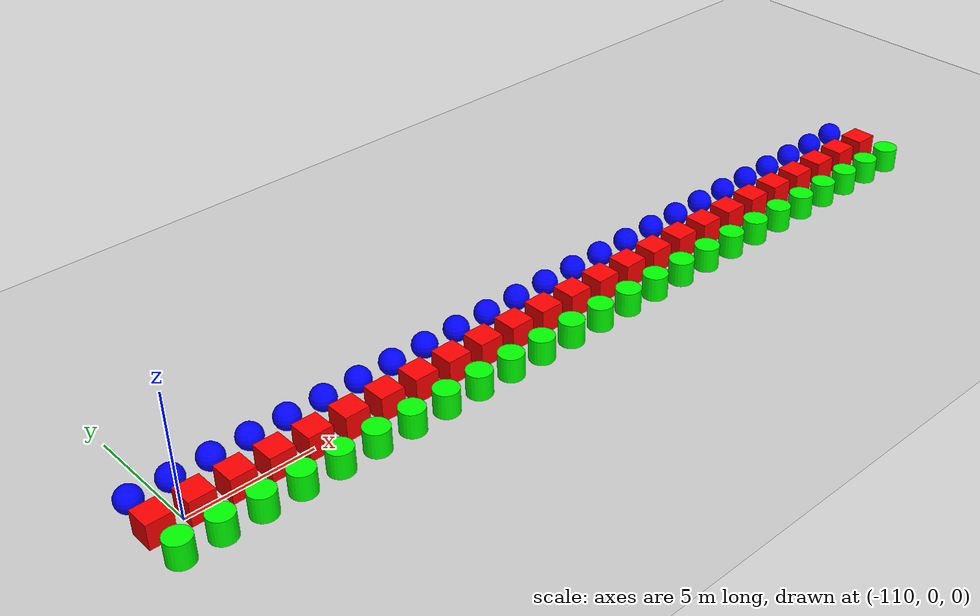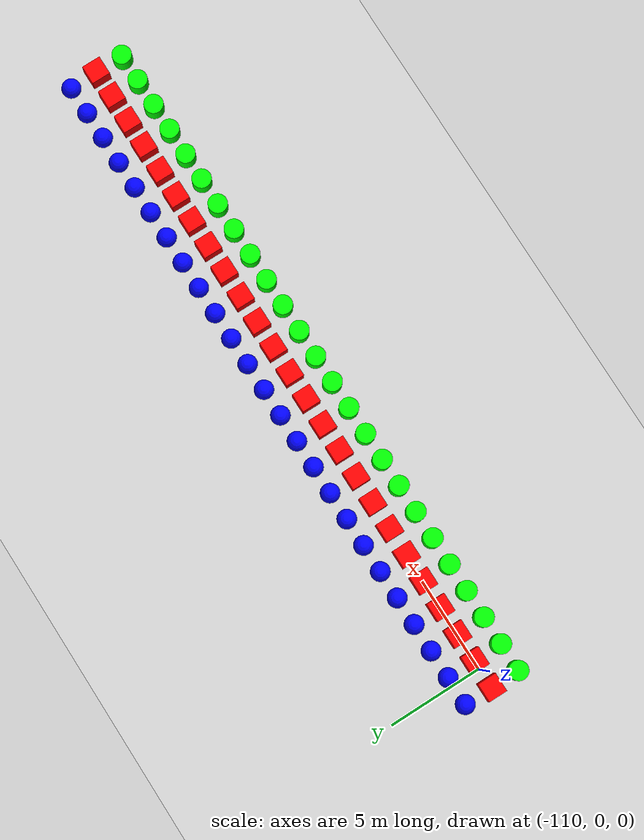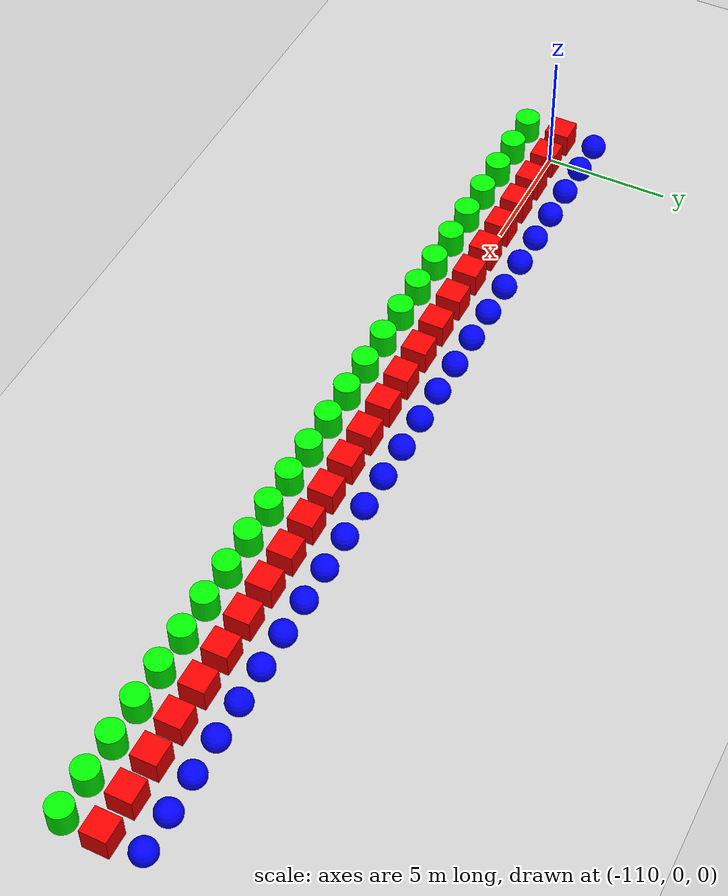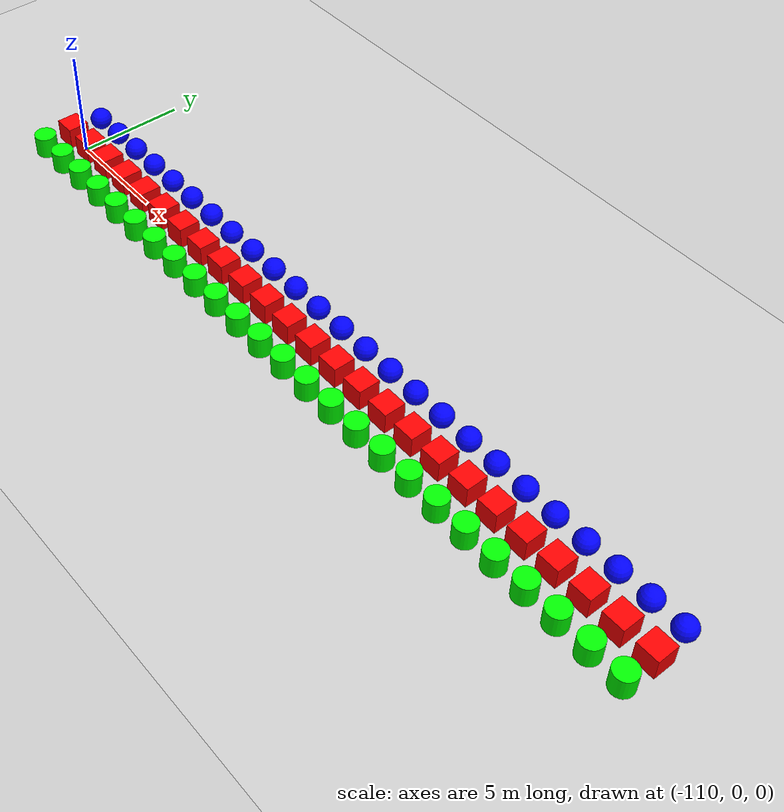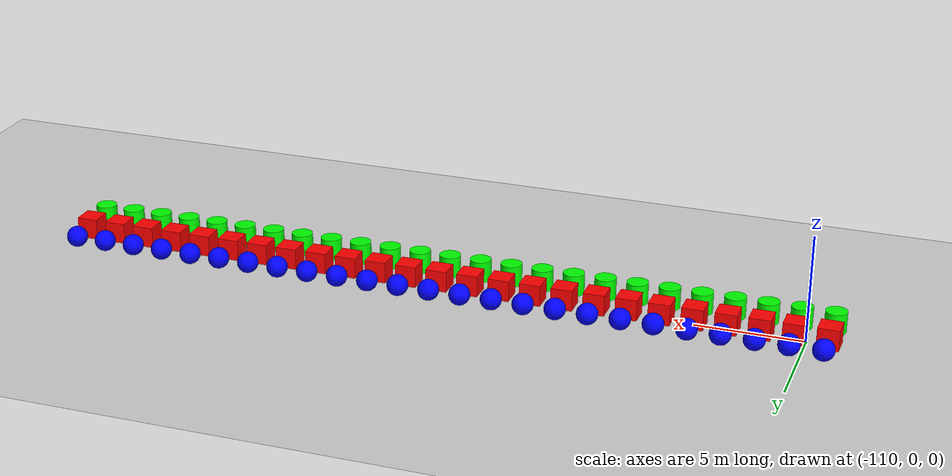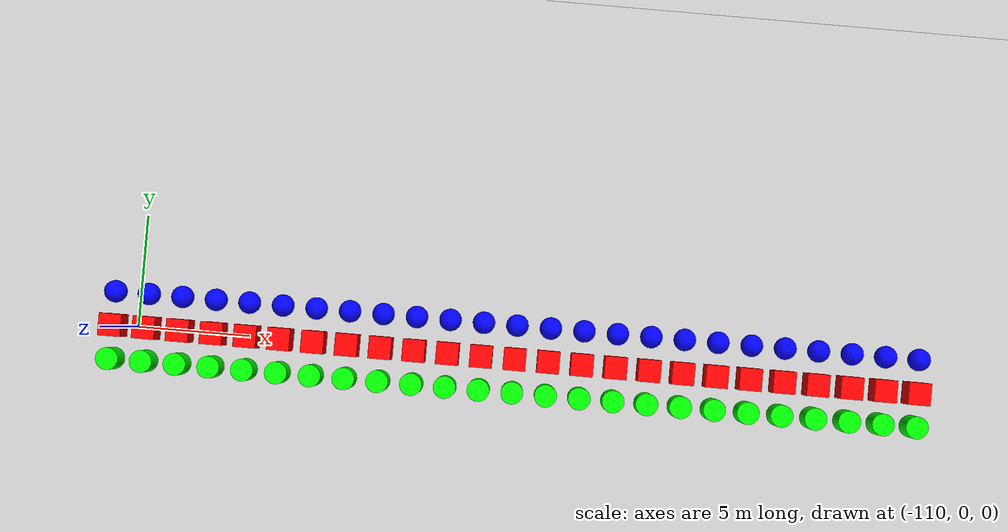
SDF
<sdf version="1.6">
 <world name="shapes">
  <model name="ground_plane">
   <static>true</static>
   <link name="link">
    <collision name="collision">
     <geometry><plane><normal>0 0 1</normal><size>100 100</size></plane></geometry>
    </collision>
    <visual name="visual">
     <geometry><plane><normal>0 0 1</normal><size>100 100</size></plane></geometry>
     <material>
      <ambient>0.8 0.8 0.8 1</ambient>
      <diffuse>0.8 0.8 0.8 1</diffuse>
      <specular>0.8 0.8 0.8 1</specular>
     </material>
    </visual>
   </link>
  </model>
  <model name="box_426">
   <static>false</static>
   <pose>-111.0 0 0.5 0 0 0</pose>
   <link name="box_link">
    <inertial>
     <inertia><ixx>1</ixx><ixy>0</ixy><ixz>0</ixz><iyy>1</iyy><iyz>0</iyz><izz>1</izz></inertia>
     <mass>1.0</mass>
    </inertial>
    <collision name="box_collision"><geometry><box><size>1 1 1</size></box></geometry></collision>
    <visual name="box_visual">
     <geometry><box><size>1 1 1</size></box></geometry>
     <material><ambient>1 0 0 1</ambient><diffuse>1 0 0 1</diffuse><specular>1 0 0 1</specular></material>
    </visual>
   </link>
  </model>
  <model name="cylinder_426">
   <static>false</static>
   <pose>-111.0 -1.5 0.5 0 0 0</pose>
   <link name="cylinder_link">
    <inertial>
     <inertia><ixx>2</ixx><ixy>0</ixy><ixz>0</ixz><iyy>2</iyy><iyz>0</iyz><izz>2</izz></inertia>
     <mass>2.0</mass>
    </inertial>
    <collision name="cylinder_collision">
     <geometry><cylinder><radius>0.5</radius><length>1.0</length></cylinder></geometry>
    </collision>
    <visual name="cylinder_visual">
     <geometry><cylinder><radius>0.5</radius><length>1.0</length></cylinder></geometry>
     <material><ambient>0 1 0 1</ambient><diffuse>0 1 0 1</diffuse><specular>0 1 0 1</specular></material>
    </visual>
   </link>
  </model>
  <model name="sphere_426">
   <static>false</static>
   <pose>-111.0 1.5 0.5 0 0 0</pose>
   <link name="sphere_link">
    <inertial>
     <inertia><ixx>3</ixx><ixy>0</ixy><ixz>0</ixz><iyy>3</iyy><iyz>0</iyz><izz>3</izz></inertia>
     <mass>3.0</mass>
    </inertial>
    <collision name="sphere_collision"><geometry><sphere><radius>0.5</radius></sphere></geometry></collision>
    <visual name="sphere_visual">
     <geometry><sphere><radius>0.5</radius></sphere></geometry>
     <material><ambient>0 0 1 1</ambient><diffuse>0 0 1 1</diffuse><specular>0 0 1 1</specular></material>
    </visual>
   </link>
  </model>
  <model name="box_427">
   <static>false</static>
   <pose>-109.5 0 0.5 0 0 0</pose>
   <link name="box_link">
    <inertial>
     <inertia><ixx>1</ixx><ixy>0</ixy><ixz>0</ixz><iyy>1</iyy><iyz>0</iyz><izz>1</izz></inertia>
     <mass>1.0</mass>
    </inertial>
    <collision name="box_collision"><geometry><box><size>1 1 1</size></box></geometry></collision>
    <visual name="box_visual">
     <geometry><box><size>1 1 1</size></box></geometry>
     <material><ambient>1 0 0 1</ambient><diffuse>1 0 0 1</diffuse><specular>1 0 0 1</specular></material>
    </visual>
   </link>
  </model>
  <model name="cylinder_427">
   <static>false</static>
   <pose>-109.5 -1.5 0.5 0 0 0</pose>
   <link name="cylinder_link">
    <inertial>
     <inertia><ixx>2</ixx><ixy>0</ixy><ixz>0</ixz><iyy>2</iyy><iyz>0</iyz><izz>2</izz></inertia>
     <mass>2.0</mass>
    </inertial>
    <collision name="cylinder_collision">
     <geometry><cylinder><radius>0.5</radius><length>1.0</length></cylinder></geometry>
    </collision>
    <visual name="cylinder_visual">
     <geometry><cylinder><radius>0.5</radius><length>1.0</length></cylinder></geometry>
     <material><ambient>0 1 0 1</ambient><diffuse>0 1 0 1</diffuse><specular>0 1 0 1</specular></material>
    </visual>
   </link>
  </model>
  <model name="sphere_427">
   <static>false</static>
   <pose>-109.5 1.5 0.5 0 0 0</pose>
   <link name="sphere_link">
    <inertial>
     <inertia><ixx>3</ixx><ixy>0</ixy><ixz>0</ixz><iyy>3</iyy><iyz>0</iyz><izz>3</izz></inertia>
     <mass>3.0</mass>
    </inertial>
    <collision name="sphere_collision"><geometry><sphere><radius>0.5</radius></sphere></geometry></collision>
    <visual name="sphere_visual">
     <geometry><sphere><radius>0.5</radius></sphere></geometry>
     <material><ambient>0 0 1 1</ambient><diffuse>0 0 1 1</diffuse><specular>0 0 1 1</specular></material>
    </visual>
   </link>
  </model>
  <model name="box_428">
   <static>false</static>
   <pose>-108.0 0 0.5 0 0 0</pose>
   <link name="box_link">
    <inertial>
     <inertia><ixx>1</ixx><ixy>0</ixy><ixz>0</ixz><iyy>1</iyy><iyz>0</iyz><izz>1</izz></inertia>
     <mass>1.0</mass>
    </inertial>
    <collision name="box_collision"><geometry><box><size>1 1 1</size></box></geometry></collision>
    <visual name="box_visual">
     <geometry><box><size>1 1 1</size></box></geometry>
     <material><ambient>1 0 0 1</ambient><diffuse>1 0 0 1</diffuse><specular>1 0 0 1</specular></material>
    </visual>
   </link>
  </model>
  <model name="cylinder_428">
   <static>false</static>
   <pose>-108.0 -1.5 0.5 0 0 0</pose>
   <link name="cylinder_link">
    <inertial>
     <inertia><ixx>2</ixx><ixy>0</ixy><ixz>0</ixz><iyy>2</iyy><iyz>0</iyz><izz>2</izz></inertia>
     <mass>2.0</mass>
    </inertial>
    <collision name="cylinder_collision">
     <geometry><cylinder><radius>0.5</radius><length>1.0</length></cylinder></geometry>
    </collision>
    <visual name="cylinder_visual">
     <geometry><cylinder><radius>0.5</radius><length>1.0</length></cylinder></geometry>
     <material><ambient>0 1 0 1</ambient><diffuse>0 1 0 1</diffuse><specular>0 1 0 1</specular></material>
    </visual>
   </link>
  </model>
  <model name="sphere_428">
   <static>false</static>
   <pose>-108.0 1.5 0.5 0 0 0</pose>
   <link name="sphere_link">
    <inertial>
     <inertia><ixx>3</ixx><ixy>0</ixy><ixz>0</ixz><iyy>3</iyy><iyz>0</iyz><izz>3</izz></inertia>
     <mass>3.0</mass>
    </inertial>
    <collision name="sphere_collision"><geometry><sphere><radius>0.5</radius></sphere></geometry></collision>
    <visual name="sphere_visual">
     <geometry><sphere><radius>0.5</radius></sphere></geometry>
     <material><ambient>0 0 1 1</ambient><diffuse>0 0 1 1</diffuse><specular>0 0 1 1</specular></material>
    </visual>
   </link>
  </model>
  <model name="box_429">
   <static>false</static>
   <pose>-106.5 0 0.5 0 0 0</pose>
   <link name="box_link">
    <inertial>
     <inertia><ixx>1</ixx><ixy>0</ixy><ixz>0</ixz><iyy>1</iyy><iyz>0</iyz><izz>1</izz></inertia>
     <mass>1.0</mass>
    </inertial>
    <collision name="box_collision"><geometry><box><size>1 1 1</size></box></geometry></collision>
    <visual name="box_visual">
     <geometry><box><size>1 1 1</size></box></geometry>
     <material><ambient>1 0 0 1</ambient><diffuse>1 0 0 1</diffuse><specular>1 0 0 1</specular></material>
    </visual>
   </link>
  </model>
  <model name="cylinder_429">
   <static>false</static>
   <pose>-106.5 -1.5 0.5 0 0 0</pose>
   <link name="cylinder_link">
    <inertial>
     <inertia><ixx>2</ixx><ixy>0</ixy><ixz>0</ixz><iyy>2</iyy><iyz>0</iyz><izz>2</izz></inertia>
     <mass>2.0</mass>
    </inertial>
    <collision name="cylinder_collision">
     <geometry><cylinder><radius>0.5</radius><length>1.0</length></cylinder></geometry>
    </collision>
    <visual name="cylinder_visual">
     <geometry><cylinder><radius>0.5</radius><length>1.0</length></cylinder></geometry>
     <material><ambient>0 1 0 1</ambient><diffuse>0 1 0 1</diffuse><specular>0 1 0 1</specular></material>
    </visual>
   </link>
  </model>
  <model name="sphere_429">
   <static>false</static>
   <pose>-106.5 1.5 0.5 0 0 0</pose>
   <link name="sphere_link">
    <inertial>
     <inertia><ixx>3</ixx><ixy>0</ixy><ixz>0</ixz><iyy>3</iyy><iyz>0</iyz><izz>3</izz></inertia>
     <mass>3.0</mass>
    </inertial>
    <collision name="sphere_collision"><geometry><sphere><radius>0.5</radius></sphere></geometry></collision>
    <visual name="sphere_visual">
     <geometry><sphere><radius>0.5</radius></sphere></geometry>
     <material><ambient>0 0 1 1</ambient><diffuse>0 0 1 1</diffuse><specular>0 0 1 1</specular></material>
    </visual>
   </link>
  </model>
  <model name="box_430">
   <static>false</static>
   <pose>-105.0 0 0.5 0 0 0</pose>
   <link name="box_link">
    <inertial>
     <inertia><ixx>1</ixx><ixy>0</ixy><ixz>0</ixz><iyy>1</iyy><iyz>0</iyz><izz>1</izz></inertia>
     <mass>1.0</mass>
    </inertial>
    <collision name="box_collision"><geometry><box><size>1 1 1</size></box></geometry></collision>
    <visual name="box_visual">
     <geometry><box><size>1 1 1</size></box></geometry>
     <material><ambient>1 0 0 1</ambient><diffuse>1 0 0 1</diffuse><specular>1 0 0 1</specular></material>
    </visual>
   </link>
  </model>
  <model name="cylinder_430">
   <static>false</static>
   <pose>-105.0 -1.5 0.5 0 0 0</pose>
   <link name="cylinder_link">
    <inertial>
     <inertia><ixx>2</ixx><ixy>0</ixy><ixz>0</ixz><iyy>2</iyy><iyz>0</iyz><izz>2</izz></inertia>
     <mass>2.0</mass>
    </inertial>
    <collision name="cylinder_collision">
     <geometry><cylinder><radius>0.5</radius><length>1.0</length></cylinder></geometry>
    </collision>
    <visual name="cylinder_visual">
     <geometry><cylinder><radius>0.5</radius><length>1.0</length></cylinder></geometry>
     <material><ambient>0 1 0 1</ambient><diffuse>0 1 0 1</diffuse><specular>0 1 0 1</specular></material>
    </visual>
   </link>
  </model>
  <model name="sphere_430">
   <static>false</static>
   <pose>-105.0 1.5 0.5 0 0 0</pose>
   <link name="sphere_link">
    <inertial>
     <inertia><ixx>3</ixx><ixy>0</ixy><ixz>0</ixz><iyy>3</iyy><iyz>0</iyz><izz>3</izz></inertia>
     <mass>3.0</mass>
    </inertial>
    <collision name="sphere_collision"><geometry><sphere><radius>0.5</radius></sphere></geometry></collision>
    <visual name="sphere_visual">
     <geometry><sphere><radius>0.5</radius></sphere></geometry>
     <material><ambient>0 0 1 1</ambient><diffuse>0 0 1 1</diffuse><specular>0 0 1 1</specular></material>
    </visual>
   </link>
  </model>
  <model name="box_431">
   <static>false</static>
   <pose>-103.5 0 0.5 0 0 0</pose>
   <link name="box_link">
    <inertial>
     <inertia><ixx>1</ixx><ixy>0</ixy><ixz>0</ixz><iyy>1</iyy><iyz>0</iyz><izz>1</izz></inertia>
     <mass>1.0</mass>
    </inertial>
    <collision name="box_collision"><geometry><box><size>1 1 1</size></box></geometry></collision>
    <visual name="box_visual">
     <geometry><box><size>1 1 1</size></box></geometry>
     <material><ambient>1 0 0 1</ambient><diffuse>1 0 0 1</diffuse><specular>1 0 0 1</specular></material>
    </visual>
   </link>
  </model>
  <model name="cylinder_431">
   <static>false</static>
   <pose>-103.5 -1.5 0.5 0 0 0</pose>
   <link name="cylinder_link">
    <inertial>
     <inertia><ixx>2</ixx><ixy>0</ixy><ixz>0</ixz><iyy>2</iyy><iyz>0</iyz><izz>2</izz></inertia>
     <mass>2.0</mass>
    </inertial>
    <collision name="cylinder_collision">
     <geometry><cylinder><radius>0.5</radius><length>1.0</length></cylinder></geometry>
    </collision>
    <visual name="cylinder_visual">
     <geometry><cylinder><radius>0.5</radius><length>1.0</length></cylinder></geometry>
     <material><ambient>0 1 0 1</ambient><diffuse>0 1 0 1</diffuse><specular>0 1 0 1</specular></material>
    </visual>
   </link>
  </model>
  <model name="sphere_431">
   <static>false</static>
   <pose>-103.5 1.5 0.5 0 0 0</pose>
   <link name="sphere_link">
    <inertial>
     <inertia><ixx>3</ixx><ixy>0</ixy><ixz>0</ixz><iyy>3</iyy><iyz>0</iyz><izz>3</izz></inertia>
     <mass>3.0</mass>
    </inertial>
    <collision name="sphere_collision"><geometry><sphere><radius>0.5</radius></sphere></geometry></collision>
    <visual name="sphere_visual">
     <geometry><sphere><radius>0.5</radius></sphere></geometry>
     <material><ambient>0 0 1 1</ambient><diffuse>0 0 1 1</diffuse><specular>0 0 1 1</specular></material>
    </visual>
   </link>
  </model>
  <model name="box_432">
   <static>false</static>
   <pose>-102.0 0 0.5 0 0 0</pose>
   <link name="box_link">
    <inertial>
     <inertia><ixx>1</ixx><ixy>0</ixy><ixz>0</ixz><iyy>1</iyy><iyz>0</iyz><izz>1</izz></inertia>
     <mass>1.0</mass>
    </inertial>
    <collision name="box_collision"><geometry><box><size>1 1 1</size></box></geometry></collision>
    <visual name="box_visual">
     <geometry><box><size>1 1 1</size></box></geometry>
     <material><ambient>1 0 0 1</ambient><diffuse>1 0 0 1</diffuse><specular>1 0 0 1</specular></material>
    </visual>
   </link>
  </model>
  <model name="cylinder_432">
   <static>false</static>
   <pose>-102.0 -1.5 0.5 0 0 0</pose>
   <link name="cylinder_link">
    <inertial>
     <inertia><ixx>2</ixx><ixy>0</ixy><ixz>0</ixz><iyy>2</iyy><iyz>0</iyz><izz>2</izz></inertia>
     <mass>2.0</mass>
    </inertial>
    <collision name="cylinder_collision">
     <geometry><cylinder><radius>0.5</radius><length>1.0</length></cylinder></geometry>
    </collision>
    <visual name="cylinder_visual">
     <geometry><cylinder><radius>0.5</radius><length>1.0</length></cylinder></geometry>
     <material><ambient>0 1 0 1</ambient><diffuse>0 1 0 1</diffuse><specular>0 1 0 1</specular></material>
    </visual>
   </link>
  </model>
  <model name="sphere_432">
   <static>false</static>
   <pose>-102.0 1.5 0.5 0 0 0</pose>
   <link name="sphere_link">
    <inertial>
     <inertia><ixx>3</ixx><ixy>0</ixy><ixz>0</ixz><iyy>3</iyy><iyz>0</iyz><izz>3</izz></inertia>
     <mass>3.0</mass>
    </inertial>
    <collision name="sphere_collision"><geometry><sphere><radius>0.5</radius></sphere></geometry></collision>
    <visual name="sphere_visual">
     <geometry><sphere><radius>0.5</radius></sphere></geometry>
     <material><ambient>0 0 1 1</ambient><diffuse>0 0 1 1</diffuse><specular>0 0 1 1</specular></material>
    </visual>
   </link>
  </model>
  <model name="box_433">
   <static>false</static>
   <pose>-100.5 0 0.5 0 0 0</pose>
   <link name="box_link">
    <inertial>
     <inertia><ixx>1</ixx><ixy>0</ixy><ixz>0</ixz><iyy>1</iyy><iyz>0</iyz><izz>1</izz></inertia>
     <mass>1.0</mass>
    </inertial>
    <collision name="box_collision"><geometry><box><size>1 1 1</size></box></geometry></collision>
    <visual name="box_visual">
     <geometry><box><size>1 1 1</size></box></geometry>
     <material><ambient>1 0 0 1</ambient><diffuse>1 0 0 1</diffuse><specular>1 0 0 1</specular></material>
    </visual>
   </link>
  </model>
  <model name="cylinder_433">
   <static>false</static>
   <pose>-100.5 -1.5 0.5 0 0 0</pose>
   <link name="cylinder_link">
    <inertial>
     <inertia><ixx>2</ixx><ixy>0</ixy><ixz>0</ixz><iyy>2</iyy><iyz>0</iyz><izz>2</izz></inertia>
     <mass>2.0</mass>
    </inertial>
    <collision name="cylinder_collision">
     <geometry><cylinder><radius>0.5</radius><length>1.0</length></cylinder></geometry>
    </collision>
    <visual name="cylinder_visual">
     <geometry><cylinder><radius>0.5</radius><length>1.0</length></cylinder></geometry>
     <material><ambient>0 1 0 1</ambient><diffuse>0 1 0 1</diffuse><specular>0 1 0 1</specular></material>
    </visual>
   </link>
  </model>
  <model name="sphere_433">
   <static>false</static>
   <pose>-100.5 1.5 0.5 0 0 0</pose>
   <link name="sphere_link">
    <inertial>
     <inertia><ixx>3</ixx><ixy>0</ixy><ixz>0</ixz><iyy>3</iyy><iyz>0</iyz><izz>3</izz></inertia>
     <mass>3.0</mass>
    </inertial>
    <collision name="sphere_collision"><geometry><sphere><radius>0.5</radius></sphere></geometry></collision>
    <visual name="sphere_visual">
     <geometry><sphere><radius>0.5</radius></sphere></geometry>
     <material><ambient>0 0 1 1</ambient><diffuse>0 0 1 1</diffuse><specular>0 0 1 1</specular></material>
    </visual>
   </link>
  </model>
  <model name="box_434">
   <static>false</static>
   <pose>-99.0 0 0.5 0 0 0</pose>
   <link name="box_link">
    <inertial>
     <inertia><ixx>1</ixx><ixy>0</ixy><ixz>0</ixz><iyy>1</iyy><iyz>0</iyz><izz>1</izz></inertia>
     <mass>1.0</mass>
    </inertial>
    <collision name="box_collision"><geometry><box><size>1 1 1</size></box></geometry></collision>
    <visual name="box_visual">
     <geometry><box><size>1 1 1</size></box></geometry>
     <material><ambient>1 0 0 1</ambient><diffuse>1 0 0 1</diffuse><specular>1 0 0 1</specular></material>
    </visual>
   </link>
  </model>
  <model name="cylinder_434">
   <static>false</static>
   <pose>-99.0 -1.5 0.5 0 0 0</pose>
   <link name="cylinder_link">
    <inertial>
     <inertia><ixx>2</ixx><ixy>0</ixy><ixz>0</ixz><iyy>2</iyy><iyz>0</iyz><izz>2</izz></inertia>
     <mass>2.0</mass>
    </inertial>
    <collision name="cylinder_collision">
     <geometry><cylinder><radius>0.5</radius><length>1.0</length></cylinder></geometry>
    </collision>
    <visual name="cylinder_visual">
     <geometry><cylinder><radius>0.5</radius><length>1.0</length></cylinder></geometry>
     <material><ambient>0 1 0 1</ambient><diffuse>0 1 0 1</diffuse><specular>0 1 0 1</specular></material>
    </visual>
   </link>
  </model>
  <model name="sphere_434">
   <static>false</static>
   <pose>-99.0 1.5 0.5 0 0 0</pose>
   <link name="sphere_link">
    <inertial>
     <inertia><ixx>3</ixx><ixy>0</ixy><ixz>0</ixz><iyy>3</iyy><iyz>0</iyz><izz>3</izz></inertia>
     <mass>3.0</mass>
    </inertial>
    <collision name="sphere_collision"><geometry><sphere><radius>0.5</radius></sphere></geometry></collision>
    <visual name="sphere_visual">
     <geometry><sphere><radius>0.5</radius></sphere></geometry>
     <material><ambient>0 0 1 1</ambient><diffuse>0 0 1 1</diffuse><specular>0 0 1 1</specular></material>
    </visual>
   </link>
  </model>
  <model name="box_435">
   <static>false</static>
   <pose>-97.5 0 0.5 0 0 0</pose>
   <link name="box_link">
    <inertial>
     <inertia><ixx>1</ixx><ixy>0</ixy><ixz>0</ixz><iyy>1</iyy><iyz>0</iyz><izz>1</izz></inertia>
     <mass>1.0</mass>
    </inertial>
    <collision name="box_collision"><geometry><box><size>1 1 1</size></box></geometry></collision>
    <visual name="box_visual">
     <geometry><box><size>1 1 1</size></box></geometry>
     <material><ambient>1 0 0 1</ambient><diffuse>1 0 0 1</diffuse><specular>1 0 0 1</specular></material>
    </visual>
   </link>
  </model>
  <model name="cylinder_435">
   <static>false</static>
   <pose>-97.5 -1.5 0.5 0 0 0</pose>
   <link name="cylinder_link">
    <inertial>
     <inertia><ixx>2</ixx><ixy>0</ixy><ixz>0</ixz><iyy>2</iyy><iyz>0</iyz><izz>2</izz></inertia>
     <mass>2.0</mass>
    </inertial>
    <collision name="cylinder_collision">
     <geometry><cylinder><radius>0.5</radius><length>1.0</length></cylinder></geometry>
    </collision>
    <visual name="cylinder_visual">
     <geometry><cylinder><radius>0.5</radius><length>1.0</length></cylinder></geometry>
     <material><ambient>0 1 0 1</ambient><diffuse>0 1 0 1</diffuse><specular>0 1 0 1</specular></material>
    </visual>
   </link>
  </model>
  <model name="sphere_435">
   <static>false</static>
   <pose>-97.5 1.5 0.5 0 0 0</pose>
   <link name="sphere_link">
    <inertial>
     <inertia><ixx>3</ixx><ixy>0</ixy><ixz>0</ixz><iyy>3</iyy><iyz>0</iyz><izz>3</izz></inertia>
     <mass>3.0</mass>
    </inertial>
    <collision name="sphere_collision"><geometry><sphere><radius>0.5</radius></sphere></geometry></collision>
    <visual name="sphere_visual">
     <geometry><sphere><radius>0.5</radius></sphere></geometry>
     <material><ambient>0 0 1 1</ambient><diffuse>0 0 1 1</diffuse><specular>0 0 1 1</specular></material>
    </visual>
   </link>
  </model>
  <model name="box_436">
   <static>false</static>
   <pose>-96.0 0 0.5 0 0 0</pose>
   <link name="box_link">
    <inertial>
     <inertia><ixx>1</ixx><ixy>0</ixy><ixz>0</ixz><iyy>1</iyy><iyz>0</iyz><izz>1</izz></inertia>
     <mass>1.0</mass>
    </inertial>
    <collision name="box_collision"><geometry><box><size>1 1 1</size></box></geometry></collision>
    <visual name="box_visual">
     <geometry><box><size>1 1 1</size></box></geometry>
     <material><ambient>1 0 0 1</ambient><diffuse>1 0 0 1</diffuse><specular>1 0 0 1</specular></material>
    </visual>
   </link>
  </model>
  <model name="cylinder_436">
   <static>false</static>
   <pose>-96.0 -1.5 0.5 0 0 0</pose>
   <link name="cylinder_link">
    <inertial>
     <inertia><ixx>2</ixx><ixy>0</ixy><ixz>0</ixz><iyy>2</iyy><iyz>0</iyz><izz>2</izz></inertia>
     <mass>2.0</mass>
    </inertial>
    <collision name="cylinder_collision">
     <geometry><cylinder><radius>0.5</radius><length>1.0</length></cylinder></geometry>
    </collision>
    <visual name="cylinder_visual">
     <geometry><cylinder><radius>0.5</radius><length>1.0</length></cylinder></geometry>
     <material><ambient>0 1 0 1</ambient><diffuse>0 1 0 1</diffuse><specular>0 1 0 1</specular></material>
    </visual>
   </link>
  </model>
  <model name="sphere_436">
   <static>false</static>
   <pose>-96.0 1.5 0.5 0 0 0</pose>
   <link name="sphere_link">
    <inertial>
     <inertia><ixx>3</ixx><ixy>0</ixy><ixz>0</ixz><iyy>3</iyy><iyz>0</iyz><izz>3</izz></inertia>
     <mass>3.0</mass>
    </inertial>
    <collision name="sphere_collision"><geometry><sphere><radius>0.5</radius></sphere></geometry></collision>
    <visual name="sphere_visual">
     <geometry><sphere><radius>0.5</radius></sphere></geometry>
     <material><ambient>0 0 1 1</ambient><diffuse>0 0 1 1</diffuse><specular>0 0 1 1</specular></material>
    </visual>
   </link>
  </model>
  <model name="box_437">
   <static>false</static>
   <pose>-94.5 0 0.5 0 0 0</pose>
   <link name="box_link">
    <inertial>
     <inertia><ixx>1</ixx><ixy>0</ixy><ixz>0</ixz><iyy>1</iyy><iyz>0</iyz><izz>1</izz></inertia>
     <mass>1.0</mass>
    </inertial>
    <collision name="box_collision"><geometry><box><size>1 1 1</size></box></geometry></collision>
    <visual name="box_visual">
     <geometry><box><size>1 1 1</size></box></geometry>
     <material><ambient>1 0 0 1</ambient><diffuse>1 0 0 1</diffuse><specular>1 0 0 1</specular></material>
    </visual>
   </link>
  </model>
  <model name="cylinder_437">
   <static>false</static>
   <pose>-94.5 -1.5 0.5 0 0 0</pose>
   <link name="cylinder_link">
    <inertial>
     <inertia><ixx>2</ixx><ixy>0</ixy><ixz>0</ixz><iyy>2</iyy><iyz>0</iyz><izz>2</izz></inertia>
     <mass>2.0</mass>
    </inertial>
    <collision name="cylinder_collision">
     <geometry><cylinder><radius>0.5</radius><length>1.0</length></cylinder></geometry>
    </collision>
    <visual name="cylinder_visual">
     <geometry><cylinder><radius>0.5</radius><length>1.0</length></cylinder></geometry>
     <material><ambient>0 1 0 1</ambient><diffuse>0 1 0 1</diffuse><specular>0 1 0 1</specular></material>
    </visual>
   </link>
  </model>
  <model name="sphere_437">
   <static>false</static>
   <pose>-94.5 1.5 0.5 0 0 0</pose>
   <link name="sphere_link">
    <inertial>
     <inertia><ixx>3</ixx><ixy>0</ixy><ixz>0</ixz><iyy>3</iyy><iyz>0</iyz><izz>3</izz></inertia>
     <mass>3.0</mass>
    </inertial>
    <collision name="sphere_collision"><geometry><sphere><radius>0.5</radius></sphere></geometry></collision>
    <visual name="sphere_visual">
     <geometry><sphere><radius>0.5</radius></sphere></geometry>
     <material><ambient>0 0 1 1</ambient><diffuse>0 0 1 1</diffuse><specular>0 0 1 1</specular></material>
    </visual>
   </link>
  </model>
  <model name="box_438">
   <static>false</static>
   <pose>-93.0 0 0.5 0 0 0</pose>
   <link name="box_link">
    <inertial>
     <inertia><ixx>1</ixx><ixy>0</ixy><ixz>0</ixz><iyy>1</iyy><iyz>0</iyz><izz>1</izz></inertia>
     <mass>1.0</mass>
    </inertial>
    <collision name="box_collision"><geometry><box><size>1 1 1</size></box></geometry></collision>
    <visual name="box_visual">
     <geometry><box><size>1 1 1</size></box></geometry>
     <material><ambient>1 0 0 1</ambient><diffuse>1 0 0 1</diffuse><specular>1 0 0 1</specular></material>
    </visual>
   </link>
  </model>
  <model name="cylinder_438">
   <static>false</static>
   <pose>-93.0 -1.5 0.5 0 0 0</pose>
   <link name="cylinder_link">
    <inertial>
     <inertia><ixx>2</ixx><ixy>0</ixy><ixz>0</ixz><iyy>2</iyy><iyz>0</iyz><izz>2</izz></inertia>
     <mass>2.0</mass>
    </inertial>
    <collision name="cylinder_collision">
     <geometry><cylinder><radius>0.5</radius><length>1.0</length></cylinder></geometry>
    </collision>
    <visual name="cylinder_visual">
     <geometry><cylinder><radius>0.5</radius><length>1.0</length></cylinder></geometry>
     <material><ambient>0 1 0 1</ambient><diffuse>0 1 0 1</diffuse><specular>0 1 0 1</specular></material>
    </visual>
   </link>
  </model>
  <model name="sphere_438">
   <static>false</static>
   <pose>-93.0 1.5 0.5 0 0 0</pose>
   <link name="sphere_link">
    <inertial>
     <inertia><ixx>3</ixx><ixy>0</ixy><ixz>0</ixz><iyy>3</iyy><iyz>0</iyz><izz>3</izz></inertia>
     <mass>3.0</mass>
    </inertial>
    <collision name="sphere_collision"><geometry><sphere><radius>0.5</radius></sphere></geometry></collision>
    <visual name="sphere_visual">
     <geometry><sphere><radius>0.5</radius></sphere></geometry>
     <material><ambient>0 0 1 1</ambient><diffuse>0 0 1 1</diffuse><specular>0 0 1 1</specular></material>
    </visual>
   </link>
  </model>
  <model name="box_439">
   <static>false</static>
   <pose>-91.5 0 0.5 0 0 0</pose>
   <link name="box_link">
    <inertial>
     <inertia><ixx>1</ixx><ixy>0</ixy><ixz>0</ixz><iyy>1</iyy><iyz>0</iyz><izz>1</izz></inertia>
     <mass>1.0</mass>
    </inertial>
    <collision name="box_collision"><geometry><box><size>1 1 1</size></box></geometry></collision>
    <visual name="box_visual">
     <geometry><box><size>1 1 1</size></box></geometry>
     <material><ambient>1 0 0 1</ambient><diffuse>1 0 0 1</diffuse><specular>1 0 0 1</specular></material>
    </visual>
   </link>
  </model>
  <model name="cylinder_439">
   <static>false</static>
   <pose>-91.5 -1.5 0.5 0 0 0</pose>
   <link name="cylinder_link">
    <inertial>
     <inertia><ixx>2</ixx><ixy>0</ixy><ixz>0</ixz><iyy>2</iyy><iyz>0</iyz><izz>2</izz></inertia>
     <mass>2.0</mass>
    </inertial>
    <collision name="cylinder_collision">
     <geometry><cylinder><radius>0.5</radius><length>1.0</length></cylinder></geometry>
    </collision>
    <visual name="cylinder_visual">
     <geometry><cylinder><radius>0.5</radius><length>1.0</length></cylinder></geometry>
     <material><ambient>0 1 0 1</ambient><diffuse>0 1 0 1</diffuse><specular>0 1 0 1</specular></material>
    </visual>
   </link>
  </model>
  <model name="sphere_439">
   <static>false</static>
   <pose>-91.5 1.5 0.5 0 0 0</pose>
   <link name="sphere_link">
    <inertial>
     <inertia><ixx>3</ixx><ixy>0</ixy><ixz>0</ixz><iyy>3</iyy><iyz>0</iyz><izz>3</izz></inertia>
     <mass>3.0</mass>
    </inertial>
    <collision name="sphere_collision"><geometry><sphere><radius>0.5</radius></sphere></geometry></collision>
    <visual name="sphere_visual">
     <geometry><sphere><radius>0.5</radius></sphere></geometry>
     <material><ambient>0 0 1 1</ambient><diffuse>0 0 1 1</diffuse><specular>0 0 1 1</specular></material>
    </visual>
   </link>
  </model>
  <model name="box_440">
   <static>false</static>
   <pose>-90.0 0 0.5 0 0 0</pose>
   <link name="box_link">
    <inertial>
     <inertia><ixx>1</ixx><ixy>0</ixy><ixz>0</ixz><iyy>1</iyy><iyz>0</iyz><izz>1</izz></inertia>
     <mass>1.0</mass>
    </inertial>
    <collision name="box_collision"><geometry><box><size>1 1 1</size></box></geometry></collision>
    <visual name="box_visual">
     <geometry><box><size>1 1 1</size></box></geometry>
     <material><ambient>1 0 0 1</ambient><diffuse>1 0 0 1</diffuse><specular>1 0 0 1</specular></material>
    </visual>
   </link>
  </model>
  <model name="cylinder_440">
   <static>false</static>
   <pose>-90.0 -1.5 0.5 0 0 0</pose>
   <link name="cylinder_link">
    <inertial>
     <inertia><ixx>2</ixx><ixy>0</ixy><ixz>0</ixz><iyy>2</iyy><iyz>0</iyz><izz>2</izz></inertia>
     <mass>2.0</mass>
    </inertial>
    <collision name="cylinder_collision">
     <geometry><cylinder><radius>0.5</radius><length>1.0</length></cylinder></geometry>
    </collision>
    <visual name="cylinder_visual">
     <geometry><cylinder><radius>0.5</radius><length>1.0</length></cylinder></geometry>
     <material><ambient>0 1 0 1</ambient><diffuse>0 1 0 1</diffuse><specular>0 1 0 1</specular></material>
    </visual>
   </link>
  </model>
  <model name="sphere_440">
   <static>false</static>
   <pose>-90.0 1.5 0.5 0 0 0</pose>
   <link name="sphere_link">
    <inertial>
     <inertia><ixx>3</ixx><ixy>0</ixy><ixz>0</ixz><iyy>3</iyy><iyz>0</iyz><izz>3</izz></inertia>
     <mass>3.0</mass>
    </inertial>
    <collision name="sphere_collision"><geometry><sphere><radius>0.5</radius></sphere></geometry></collision>
    <visual name="sphere_visual">
     <geometry><sphere><radius>0.5</radius></sphere></geometry>
     <material><ambient>0 0 1 1</ambient><diffuse>0 0 1 1</diffuse><specular>0 0 1 1</specular></material>
    </visual>
   </link>
  </model>
  <model name="box_441">
   <static>false</static>
   <pose>-88.5 0 0.5 0 0 0</pose>
   <link name="box_link">
    <inertial>
     <inertia><ixx>1</ixx><ixy>0</ixy><ixz>0</ixz><iyy>1</iyy><iyz>0</iyz><izz>1</izz></inertia>
     <mass>1.0</mass>
    </inertial>
    <collision name="box_collision"><geometry><box><size>1 1 1</size></box></geometry></collision>
    <visual name="box_visual">
     <geometry><box><size>1 1 1</size></box></geometry>
     <material><ambient>1 0 0 1</ambient><diffuse>1 0 0 1</diffuse><specular>1 0 0 1</specular></material>
    </visual>
   </link>
  </model>
  <model name="cylinder_441">
   <static>false</static>
   <pose>-88.5 -1.5 0.5 0 0 0</pose>
   <link name="cylinder_link">
    <inertial>
     <inertia><ixx>2</ixx><ixy>0</ixy><ixz>0</ixz><iyy>2</iyy><iyz>0</iyz><izz>2</izz></inertia>
     <mass>2.0</mass>
    </inertial>
    <collision name="cylinder_collision">
     <geometry><cylinder><radius>0.5</radius><length>1.0</length></cylinder></geometry>
    </collision>
    <visual name="cylinder_visual">
     <geometry><cylinder><radius>0.5</radius><length>1.0</length></cylinder></geometry>
     <material><ambient>0 1 0 1</ambient><diffuse>0 1 0 1</diffuse><specular>0 1 0 1</specular></material>
    </visual>
   </link>
  </model>
  <model name="sphere_441">
   <static>false</static>
   <pose>-88.5 1.5 0.5 0 0 0</pose>
   <link name="sphere_link">
    <inertial>
     <inertia><ixx>3</ixx><ixy>0</ixy><ixz>0</ixz><iyy>3</iyy><iyz>0</iyz><izz>3</izz></inertia>
     <mass>3.0</mass>
    </inertial>
    <collision name="sphere_collision"><geometry><sphere><radius>0.5</radius></sphere></geometry></collision>
    <visual name="sphere_visual">
     <geometry><sphere><radius>0.5</radius></sphere></geometry>
     <material><ambient>0 0 1 1</ambient><diffuse>0 0 1 1</diffuse><specular>0 0 1 1</specular></material>
    </visual>
   </link>
  </model>
  <model name="box_442">
   <static>false</static>
   <pose>-87.0 0 0.5 0 0 0</pose>
   <link name="box_link">
    <inertial>
     <inertia><ixx>1</ixx><ixy>0</ixy><ixz>0</ixz><iyy>1</iyy><iyz>0</iyz><izz>1</izz></inertia>
     <mass>1.0</mass>
    </inertial>
    <collision name="box_collision"><geometry><box><size>1 1 1</size></box></geometry></collision>
    <visual name="box_visual">
     <geometry><box><size>1 1 1</size></box></geometry>
     <material><ambient>1 0 0 1</ambient><diffuse>1 0 0 1</diffuse><specular>1 0 0 1</specular></material>
    </visual>
   </link>
  </model>
  <model name="cylinder_442">
   <static>false</static>
   <pose>-87.0 -1.5 0.5 0 0 0</pose>
   <link name="cylinder_link">
    <inertial>
     <inertia><ixx>2</ixx><ixy>0</ixy><ixz>0</ixz><iyy>2</iyy><iyz>0</iyz><izz>2</izz></inertia>
     <mass>2.0</mass>
    </inertial>
    <collision name="cylinder_collision">
     <geometry><cylinder><radius>0.5</radius><length>1.0</length></cylinder></geometry>
    </collision>
    <visual name="cylinder_visual">
     <geometry><cylinder><radius>0.5</radius><length>1.0</length></cylinder></geometry>
     <material><ambient>0 1 0 1</ambient><diffuse>0 1 0 1</diffuse><specular>0 1 0 1</specular></material>
    </visual>
   </link>
  </model>
  <model name="sphere_442">
   <static>false</static>
   <pose>-87.0 1.5 0.5 0 0 0</pose>
   <link name="sphere_link">
    <inertial>
     <inertia><ixx>3</ixx><ixy>0</ixy><ixz>0</ixz><iyy>3</iyy><iyz>0</iyz><izz>3</izz></inertia>
     <mass>3.0</mass>
    </inertial>
    <collision name="sphere_collision"><geometry><sphere><radius>0.5</radius></sphere></geometry></collision>
    <visual name="sphere_visual">
     <geometry><sphere><radius>0.5</radius></sphere></geometry>
     <material><ambient>0 0 1 1</ambient><diffuse>0 0 1 1</diffuse><specular>0 0 1 1</specular></material>
    </visual>
   </link>
  </model>
  <model name="box_443">
   <static>false</static>
   <pose>-85.5 0 0.5 0 0 0</pose>
   <link name="box_link">
    <inertial>
     <inertia><ixx>1</ixx><ixy>0</ixy><ixz>0</ixz><iyy>1</iyy><iyz>0</iyz><izz>1</izz></inertia>
     <mass>1.0</mass>
    </inertial>
    <collision name="box_collision"><geometry><box><size>1 1 1</size></box></geometry></collision>
    <visual name="box_visual">
     <geometry><box><size>1 1 1</size></box></geometry>
     <material><ambient>1 0 0 1</ambient><diffuse>1 0 0 1</diffuse><specular>1 0 0 1</specular></material>
    </visual>
   </link>
  </model>
  <model name="cylinder_443">
   <static>false</static>
   <pose>-85.5 -1.5 0.5 0 0 0</pose>
   <link name="cylinder_link">
    <inertial>
     <inertia><ixx>2</ixx><ixy>0</ixy><ixz>0</ixz><iyy>2</iyy><iyz>0</iyz><izz>2</izz></inertia>
     <mass>2.0</mass>
    </inertial>
    <collision name="cylinder_collision">
     <geometry><cylinder><radius>0.5</radius><length>1.0</length></cylinder></geometry>
    </collision>
    <visual name="cylinder_visual">
     <geometry><cylinder><radius>0.5</radius><length>1.0</length></cylinder></geometry>
     <material><ambient>0 1 0 1</ambient><diffuse>0 1 0 1</diffuse><specular>0 1 0 1</specular></material>
    </visual>
   </link>
  </model>
  <model name="sphere_443">
   <static>false</static>
   <pose>-85.5 1.5 0.5 0 0 0</pose>
   <link name="sphere_link">
    <inertial>
     <inertia><ixx>3</ixx><ixy>0</ixy><ixz>0</ixz><iyy>3</iyy><iyz>0</iyz><izz>3</izz></inertia>
     <mass>3.0</mass>
    </inertial>
    <collision name="sphere_collision"><geometry><sphere><radius>0.5</radius></sphere></geometry></collision>
    <visual name="sphere_visual">
     <geometry><sphere><radius>0.5</radius></sphere></geometry>
     <material><ambient>0 0 1 1</ambient><diffuse>0 0 1 1</diffuse><specular>0 0 1 1</specular></material>
    </visual>
   </link>
  </model>
  <model name="box_444">
   <static>false</static>
   <pose>-84.0 0 0.5 0 0 0</pose>
   <link name="box_link">
    <inertial>
     <inertia><ixx>1</ixx><ixy>0</ixy><ixz>0</ixz><iyy>1</iyy><iyz>0</iyz><izz>1</izz></inertia>
     <mass>1.0</mass>
    </inertial>
    <collision name="box_collision"><geometry><box><size>1 1 1</size></box></geometry></collision>
    <visual name="box_visual">
     <geometry><box><size>1 1 1</size></box></geometry>
     <material><ambient>1 0 0 1</ambient><diffuse>1 0 0 1</diffuse><specular>1 0 0 1</specular></material>
    </visual>
   </link>
  </model>
  <model name="cylinder_444">
   <static>false</static>
   <pose>-84.0 -1.5 0.5 0 0 0</pose>
   <link name="cylinder_link">
    <inertial>
     <inertia><ixx>2</ixx><ixy>0</ixy><ixz>0</ixz><iyy>2</iyy><iyz>0</iyz><izz>2</izz></inertia>
     <mass>2.0</mass>
    </inertial>
    <collision name="cylinder_collision">
     <geometry><cylinder><radius>0.5</radius><length>1.0</length></cylinder></geometry>
    </collision>
    <visual name="cylinder_visual">
     <geometry><cylinder><radius>0.5</radius><length>1.0</length></cylinder></geometry>
     <material><ambient>0 1 0 1</ambient><diffuse>0 1 0 1</diffuse><specular>0 1 0 1</specular></material>
    </visual>
   </link>
  </model>
  <model name="sphere_444">
   <static>false</static>
   <pose>-84.0 1.5 0.5 0 0 0</pose>
   <link name="sphere_link">
    <inertial>
     <inertia><ixx>3</ixx><ixy>0</ixy><ixz>0</ixz><iyy>3</iyy><iyz>0</iyz><izz>3</izz></inertia>
     <mass>3.0</mass>
    </inertial>
    <collision name="sphere_collision"><geometry><sphere><radius>0.5</radius></sphere></geometry></collision>
    <visual name="sphere_visual">
     <geometry><sphere><radius>0.5</radius></sphere></geometry>
     <material><ambient>0 0 1 1</ambient><diffuse>0 0 1 1</diffuse><specular>0 0 1 1</specular></material>
    </visual>
   </link>
  </model>
  <model name="box_445">
   <static>false</static>
   <pose>-82.5 0 0.5 0 0 0</pose>
   <link name="box_link">
    <inertial>
     <inertia><ixx>1</ixx><ixy>0</ixy><ixz>0</ixz><iyy>1</iyy><iyz>0</iyz><izz>1</izz></inertia>
     <mass>1.0</mass>
    </inertial>
    <collision name="box_collision"><geometry><box><size>1 1 1</size></box></geometry></collision>
    <visual name="box_visual">
     <geometry><box><size>1 1 1</size></box></geometry>
     <material><ambient>1 0 0 1</ambient><diffuse>1 0 0 1</diffuse><specular>1 0 0 1</specular></material>
    </visual>
   </link>
  </model>
  <model name="cylinder_445">
   <static>false</static>
   <pose>-82.5 -1.5 0.5 0 0 0</pose>
   <link name="cylinder_link">
    <inertial>
     <inertia><ixx>2</ixx><ixy>0</ixy><ixz>0</ixz><iyy>2</iyy><iyz>0</iyz><izz>2</izz></inertia>
     <mass>2.0</mass>
    </inertial>
    <collision name="cylinder_collision">
     <geometry><cylinder><radius>0.5</radius><length>1.0</length></cylinder></geometry>
    </collision>
    <visual name="cylinder_visual">
     <geometry><cylinder><radius>0.5</radius><length>1.0</length></cylinder></geometry>
     <material><ambient>0 1 0 1</ambient><diffuse>0 1 0 1</diffuse><specular>0 1 0 1</specular></material>
    </visual>
   </link>
  </model>
  <model name="sphere_445">
   <static>false</static>
   <pose>-82.5 1.5 0.5 0 0 0</pose>
   <link name="sphere_link">
    <inertial>
     <inertia><ixx>3</ixx><ixy>0</ixy><ixz>0</ixz><iyy>3</iyy><iyz>0</iyz><izz>3</izz></inertia>
     <mass>3.0</mass>
    </inertial>
    <collision name="sphere_collision"><geometry><sphere><radius>0.5</radius></sphere></geometry></collision>
    <visual name="sphere_visual">
     <geometry><sphere><radius>0.5</radius></sphere></geometry>
     <material><ambient>0 0 1 1</ambient><diffuse>0 0 1 1</diffuse><specular>0 0 1 1</specular></material>
    </visual>
   </link>
  </model>
  <model name="box_446">
   <static>false</static>
   <pose>-81.0 0 0.5 0 0 0</pose>
   <link name="box_link">
    <inertial>
     <inertia><ixx>1</ixx><ixy>0</ixy><ixz>0</ixz><iyy>1</iyy><iyz>0</iyz><izz>1</izz></inertia>
     <mass>1.0</mass>
    </inertial>
    <collision name="box_collision"><geometry><box><size>1 1 1</size></box></geometry></collision>
    <visual name="box_visual">
     <geometry><box><size>1 1 1</size></box></geometry>
     <material><ambient>1 0 0 1</ambient><diffuse>1 0 0 1</diffuse><specular>1 0 0 1</specular></material>
    </visual>
   </link>
  </model>
  <model name="cylinder_446">
   <static>false</static>
   <pose>-81.0 -1.5 0.5 0 0 0</pose>
   <link name="cylinder_link">
    <inertial>
     <inertia><ixx>2</ixx><ixy>0</ixy><ixz>0</ixz><iyy>2</iyy><iyz>0</iyz><izz>2</izz></inertia>
     <mass>2.0</mass>
    </inertial>
    <collision name="cylinder_collision">
     <geometry><cylinder><radius>0.5</radius><length>1.0</length></cylinder></geometry>
    </collision>
    <visual name="cylinder_visual">
     <geometry><cylinder><radius>0.5</radius><length>1.0</length></cylinder></geometry>
     <material><ambient>0 1 0 1</ambient><diffuse>0 1 0 1</diffuse><specular>0 1 0 1</specular></material>
    </visual>
   </link>
  </model>
  <model name="sphere_446">
   <static>false</static>
   <pose>-81.0 1.5 0.5 0 0 0</pose>
   <link name="sphere_link">
    <inertial>
     <inertia><ixx>3</ixx><ixy>0</ixy><ixz>0</ixz><iyy>3</iyy><iyz>0</iyz><izz>3</izz></inertia>
     <mass>3.0</mass>
    </inertial>
    <collision name="sphere_collision"><geometry><sphere><radius>0.5</radius></sphere></geometry></collision>
    <visual name="sphere_visual">
     <geometry><sphere><radius>0.5</radius></sphere></geometry>
     <material><ambient>0 0 1 1</ambient><diffuse>0 0 1 1</diffuse><specular>0 0 1 1</specular></material>
    </visual>
   </link>
  </model>
  <model name="box_447">
   <static>false</static>
   <pose>-79.5 0 0.5 0 0 0</pose>
   <link name="box_link">
    <inertial>
     <inertia><ixx>1</ixx><ixy>0</ixy><ixz>0</ixz><iyy>1</iyy><iyz>0</iyz><izz>1</izz></inertia>
     <mass>1.0</mass>
    </inertial>
    <collision name="box_collision"><geometry><box><size>1 1 1</size></box></geometry></collision>
    <visual name="box_visual">
     <geometry><box><size>1 1 1</size></box></geometry>
     <material><ambient>1 0 0 1</ambient><diffuse>1 0 0 1</diffuse><specular>1 0 0 1</specular></material>
    </visual>
   </link>
  </model>
  <model name="cylinder_447">
   <static>false</static>
   <pose>-79.5 -1.5 0.5 0 0 0</pose>
   <link name="cylinder_link">
    <inertial>
     <inertia><ixx>2</ixx><ixy>0</ixy><ixz>0</ixz><iyy>2</iyy><iyz>0</iyz><izz>2</izz></inertia>
     <mass>2.0</mass>
    </inertial>
    <collision name="cylinder_collision">
     <geometry><cylinder><radius>0.5</radius><length>1.0</length></cylinder></geometry>
    </collision>
    <visual name="cylinder_visual">
     <geometry><cylinder><radius>0.5</radius><length>1.0</length></cylinder></geometry>
     <material><ambient>0 1 0 1</ambient><diffuse>0 1 0 1</diffuse><specular>0 1 0 1</specular></material>
    </visual>
   </link>
  </model>
  <model name="sphere_447">
   <static>false</static>
   <pose>-79.5 1.5 0.5 0 0 0</pose>
   <link name="sphere_link">
    <inertial>
     <inertia><ixx>3</ixx><ixy>0</ixy><ixz>0</ixz><iyy>3</iyy><iyz>0</iyz><izz>3</izz></inertia>
     <mass>3.0</mass>
    </inertial>
    <collision name="sphere_collision"><geometry><sphere><radius>0.5</radius></sphere></geometry></collision>
    <visual name="sphere_visual">
     <geometry><sphere><radius>0.5</radius></sphere></geometry>
     <material><ambient>0 0 1 1</ambient><diffuse>0 0 1 1</diffuse><specular>0 0 1 1</specular></material>
    </visual>
   </link>
  </model>
  <model name="box_448">
   <static>false</static>
   <pose>-78.0 0 0.5 0 0 0</pose>
   <link name="box_link">
    <inertial>
     <inertia><ixx>1</ixx><ixy>0</ixy><ixz>0</ixz><iyy>1</iyy><iyz>0</iyz><izz>1</izz></inertia>
     <mass>1.0</mass>
    </inertial>
    <collision name="box_collision"><geometry><box><size>1 1 1</size></box></geometry></collision>
    <visual name="box_visual">
     <geometry><box><size>1 1 1</size></box></geometry>
     <material><ambient>1 0 0 1</ambient><diffuse>1 0 0 1</diffuse><specular>1 0 0 1</specular></material>
    </visual>
   </link>
  </model>
  <model name="cylinder_448">
   <static>false</static>
   <pose>-78.0 -1.5 0.5 0 0 0</pose>
   <link name="cylinder_link">
    <inertial>
     <inertia><ixx>2</ixx><ixy>0</ixy><ixz>0</ixz><iyy>2</iyy><iyz>0</iyz><izz>2</izz></inertia>
     <mass>2.0</mass>
    </inertial>
    <collision name="cylinder_collision">
     <geometry><cylinder><radius>0.5</radius><length>1.0</length></cylinder></geometry>
    </collision>
    <visual name="cylinder_visual">
     <geometry><cylinder><radius>0.5</radius><length>1.0</length></cylinder></geometry>
     <material><ambient>0 1 0 1</ambient><diffuse>0 1 0 1</diffuse><specular>0 1 0 1</specular></material>
    </visual>
   </link>
  </model>
  <model name="sphere_448">
   <static>false</static>
   <pose>-78.0 1.5 0.5 0 0 0</pose>
   <link name="sphere_link">
    <inertial>
     <inertia><ixx>3</ixx><ixy>0</ixy><ixz>0</ixz><iyy>3</iyy><iyz>0</iyz><izz>3</izz></inertia>
     <mass>3.0</mass>
    </inertial>
    <collision name="sphere_collision"><geometry><sphere><radius>0.5</radius></sphere></geometry></collision>
    <visual name="sphere_visual">
     <geometry><sphere><radius>0.5</radius></sphere></geometry>
     <material><ambient>0 0 1 1</ambient><diffuse>0 0 1 1</diffuse><specular>0 0 1 1</specular></material>
    </visual>
   </link>
  </model>
  <model name="box_449">
   <static>false</static>
   <pose>-76.5 0 0.5 0 0 0</pose>
   <link name="box_link">
    <inertial>
     <inertia><ixx>1</ixx><ixy>0</ixy><ixz>0</ixz><iyy>1</iyy><iyz>0</iyz><izz>1</izz></inertia>
     <mass>1.0</mass>
    </inertial>
    <collision name="box_collision"><geometry><box><size>1 1 1</size></box></geometry></collision>
    <visual name="box_visual">
     <geometry><box><size>1 1 1</size></box></geometry>
     <material><ambient>1 0 0 1</ambient><diffuse>1 0 0 1</diffuse><specular>1 0 0 1</specular></material>
    </visual>
   </link>
  </model>
  <model name="cylinder_449">
   <static>false</static>
   <pose>-76.5 -1.5 0.5 0 0 0</pose>
   <link name="cylinder_link">
    <inertial>
     <inertia><ixx>2</ixx><ixy>0</ixy><ixz>0</ixz><iyy>2</iyy><iyz>0</iyz><izz>2</izz></inertia>
     <mass>2.0</mass>
    </inertial>
    <collision name="cylinder_collision">
     <geometry><cylinder><radius>0.5</radius><length>1.0</length></cylinder></geometry>
    </collision>
    <visual name="cylinder_visual">
     <geometry><cylinder><radius>0.5</radius><length>1.0</length></cylinder></geometry>
     <material><ambient>0 1 0 1</ambient><diffuse>0 1 0 1</diffuse><specular>0 1 0 1</specular></material>
    </visual>
   </link>
  </model>
  <model name="sphere_449">
   <static>false</static>
   <pose>-76.5 1.5 0.5 0 0 0</pose>
   <link name="sphere_link">
    <inertial>
     <inertia><ixx>3</ixx><ixy>0</ixy><ixz>0</ixz><iyy>3</iyy><iyz>0</iyz><izz>3</izz></inertia>
     <mass>3.0</mass>
    </inertial>
    <collision name="sphere_collision"><geometry><sphere><radius>0.5</radius></sphere></geometry></collision>
    <visual name="sphere_visual">
     <geometry><sphere><radius>0.5</radius></sphere></geometry>
     <material><ambient>0 0 1 1</ambient><diffuse>0 0 1 1</diffuse><specular>0 0 1 1</specular></material>
    </visual>
   </link>
  </model>
  <model name="box_450">
   <static>false</static>
   <pose>-75.0 0 0.5 0 0 0</pose>
   <link name="box_link">
    <inertial>
     <inertia><ixx>1</ixx><ixy>0</ixy><ixz>0</ixz><iyy>1</iyy><iyz>0</iyz><izz>1</izz></inertia>
     <mass>1.0</mass>
    </inertial>
    <collision name="box_collision"><geometry><box><size>1 1 1</size></box></geometry></collision>
    <visual name="box_visual">
     <geometry><box><size>1 1 1</size></box></geometry>
     <material><ambient>1 0 0 1</ambient><diffuse>1 0 0 1</diffuse><specular>1 0 0 1</specular></material>
    </visual>
   </link>
  </model>
  <model name="cylinder_450">
   <static>false</static>
   <pose>-75.0 -1.5 0.5 0 0 0</pose>
   <link name="cylinder_link">
    <inertial>
     <inertia><ixx>2</ixx><ixy>0</ixy><ixz>0</ixz><iyy>2</iyy><iyz>0</iyz><izz>2</izz></inertia>
     <mass>2.0</mass>
    </inertial>
    <collision name="cylinder_collision">
     <geometry><cylinder><radius>0.5</radius><length>1.0</length></cylinder></geometry>
    </collision>
    <visual name="cylinder_visual">
     <geometry><cylinder><radius>0.5</radius><length>1.0</length></cylinder></geometry>
     <material><ambient>0 1 0 1</ambient><diffuse>0 1 0 1</diffuse><specular>0 1 0 1</specular></material>
    </visual>
   </link>
  </model>
  <model name="sphere_450">
   <static>false</static>
   <pose>-75.0 1.5 0.5 0 0 0</pose>
   <link name="sphere_link">
    <inertial>
     <inertia><ixx>3</ixx><ixy>0</ixy><ixz>0</ixz><iyy>3</iyy><iyz>0</iyz><izz>3</izz></inertia>
     <mass>3.0</mass>
    </inertial>
    <collision name="sphere_collision"><geometry><sphere><radius>0.5</radius></sphere></geometry></collision>
    <visual name="sphere_visual">
     <geometry><sphere><radius>0.5</radius></sphere></geometry>
     <material><ambient>0 0 1 1</ambient><diffuse>0 0 1 1</diffuse><specular>0 0 1 1</specular></material>
    </visual>
   </link>
  </model>
 </world>
</sdf>
